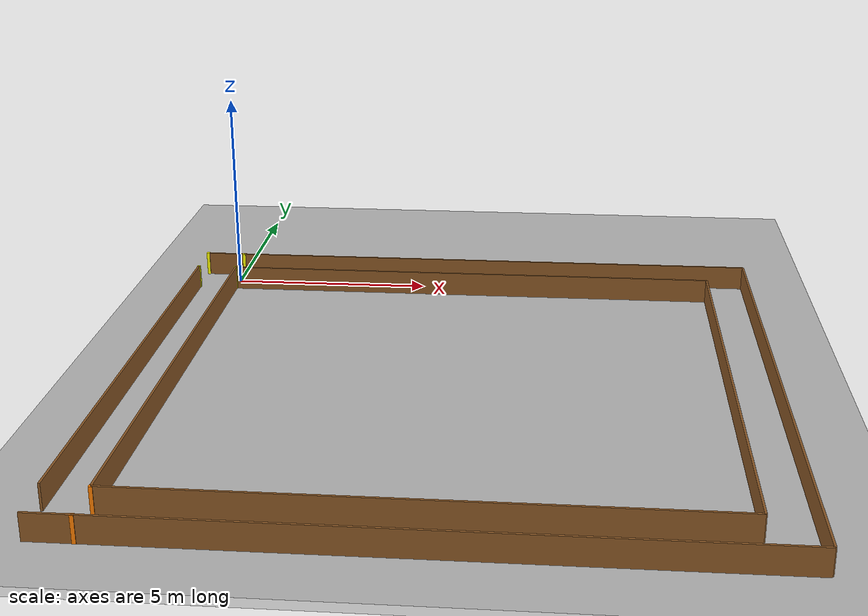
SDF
<?xml version="1.0" ?>
<sdf version='1.9'>
  <world name='simple_loop'>

    <physics name='1ms' type='ignored'>
      <max_step_size>0.001</max_step_size>
      <real_time_factor>1</real_time_factor>
      <real_time_update_rate>1000</real_time_update_rate>
    </physics>
    <gravity>0 0 -9.8</gravity>
    <magnetic_field>6e-06 2.3e-05 -4.2e-05</magnetic_field>
    <atmosphere type='adiabatic'/>

    <plugin name='gz::sim::systems::Physics'          filename='ignition-gazebo-physics-system'/>
    <plugin name='gz::sim::systems::UserCommands'     filename='ignition-gazebo-user-commands-system'/>
    <plugin name='gz::sim::systems::SceneBroadcaster' filename='ignition-gazebo-scene-broadcaster-system'/>
    <plugin name='gz::sim::systems::Contact'          filename='ignition-gazebo-contact-system'/>
    <plugin filename="ignition-gazebo-imu-system"     name="ignition::gazebo::systems::Imu"/>
    <plugin filename="gz-sim-sensors-system"          name="gz::sim::systems::Sensors">
      <render_engine>ogre2</render_engine>
    </plugin>

    <scene>
      <ambient>0.4 0.4 0.4 1</ambient>
      <background>0.7 0.7 0.7 1</background>
      <shadows>true</shadows>
    </scene>

    <light name='sun' type='directional'>
      <pose>0 0 10 0 0 0</pose>
      <cast_shadows>true</cast_shadows>
      <intensity>1</intensity>
      <direction>-0.5 0.1 -0.9</direction>
      <diffuse>0.8 0.8 0.8 1</diffuse>
      <specular>0.2 0.2 0.2 1</specular>
      <attenuation>
        <range>1000</range>
        <linear>0.01</linear>
        <constant>0.9</constant>
        <quadratic>0.001</quadratic>
      </attenuation>
    </light>

    <!-- Ground plane -->
    <model name='ground_plane'>
      <static>true</static>
      <link name='link'>
        <collision name='collision'>
          <geometry><plane><normal>0 0 1</normal><size>100 100</size></plane></geometry>
          <surface><friction><ode/></friction><bounce/><contact/></surface>
        </collision>
        <visual name='visual'>
          <geometry><plane><normal>0 0 1</normal><size>100 100</size></plane></geometry>
          <material>
            <ambient>0.8 0.8 0.8 1</ambient>
            <diffuse>0.8 0.8 0.8 1</diffuse>
            <specular>0.8 0.8 0.8 1</specular>
          </material>
        </visual>
      </link>
    </model>

    <!-- Grass texture overlay -->
    <include>
      <name>ground_plane_image</name>
      <uri>model://grass_plane</uri>
    </include>

    <!-- ================================================================
         LEG 1  (+X, y_center=0, x=0..13.525)
         ================================================================ -->

    <!-- Start posts (yellow) -->
    <model name='start_post_n'>
      <static>true</static>
      <pose>0.0 0.525 0.3 0 0 0</pose>
      <link name='link'>
        <collision name='c'><geometry><box><size>0.08 0.08 0.6</size></box></geometry></collision>
        <visual name='v'><geometry><box><size>0.08 0.08 0.6</size></box></geometry>
          <material><ambient>1 1 0 1</ambient><diffuse>1 1 0 1</diffuse></material>
        </visual>
      </link>
    </model>
    <model name='start_post_s'>
      <static>true</static>
      <pose>0.0 -0.525 0.3 0 0 0</pose>
      <link name='link'>
        <collision name='c'><geometry><box><size>0.08 0.08 0.6</size></box></geometry></collision>
        <visual name='v'><geometry><box><size>0.08 0.08 0.6</size></box></geometry>
          <material><ambient>1 1 0 1</ambient><diffuse>1 1 0 1</diffuse></material>
        </visual>
      </link>
    </model>

    <!-- Leg 1 north wall  y=+0.525, x=0..13.525 -->
    <model name='l1_n_wall'>
      <static>true</static>
      <pose>6.7625 0.525 0.3 0 0 0</pose>
      <link name='link'>
        <collision name='c'><geometry><box><size>13.525 0.05 0.6</size></box></geometry></collision>
        <visual name='v'><geometry><box><size>13.525 0.05 0.6</size></box></geometry>
          <material><ambient>0.55 0.35 0.15 1</ambient><diffuse>0.55 0.35 0.15 1</diffuse></material>
        </visual>
      </link>
    </model>

    <!-- Leg 1 south wall  y=-0.525, x=0..12.475 -->
    <model name='l1_s_wall'>
      <static>true</static>
      <pose>6.2375 -0.525 0.3 0 0 0</pose>
      <link name='link'>
        <collision name='c'><geometry><box><size>12.475 0.05 0.6</size></box></geometry></collision>
        <visual name='v'><geometry><box><size>12.475 0.05 0.6</size></box></geometry>
          <material><ambient>0.55 0.35 0.15 1</ambient><diffuse>0.55 0.35 0.15 1</diffuse></material>
        </visual>
      </link>
    </model>

    <!-- Leg 2 east (outer) wall  x=13.525, y=+0.525..-13.525 -->
    <model name='l2_e_wall'>
      <static>true</static>
      <pose>13.525 -6.5 0.3 0 0 0</pose>
      <link name='link'>
        <collision name='c'><geometry><box><size>0.05 14.05 0.6</size></box></geometry></collision>
        <visual name='v'><geometry><box><size>0.05 14.05 0.6</size></box></geometry>
          <material><ambient>0.55 0.35 0.15 1</ambient><diffuse>0.55 0.35 0.15 1</diffuse></material>
        </visual>
      </link>
    </model>

    <!-- Leg 2 west (inner) wall  x=12.475, y=-0.525..-12.475 (full, no narrow) -->
    <model name='l2_w_wall'>
      <static>true</static>
      <pose>12.475 -6.5 0.3 0 0 0</pose>
      <link name='link'>
        <collision name='c'><geometry><box><size>0.05 11.95 0.6</size></box></geometry></collision>
        <visual name='v'><geometry><box><size>0.05 11.95 0.6</size></box></geometry>
          <material><ambient>0.55 0.35 0.15 1</ambient><diffuse>0.55 0.35 0.15 1</diffuse></material>
        </visual>
      </link>
    </model>

    <!-- Leg 3 south (outer) wall  y=-13.525, x=0..13.525 -->
    <model name='l3_s_wall'>
      <static>true</static>
      <pose>6.7625 -13.525 0.3 0 0 0</pose>
      <link name='link'>
        <collision name='c'><geometry><box><size>13.525 0.05 0.6</size></box></geometry></collision>
        <visual name='v'><geometry><box><size>13.525 0.05 0.6</size></box></geometry>
          <material><ambient>0.55 0.35 0.15 1</ambient><diffuse>0.55 0.35 0.15 1</diffuse></material>
        </visual>
      </link>
    </model>

    <!-- Leg 3 north (inner) wall  y=-12.475, x=0..12.475 -->
    <model name='l3_n_wall'>
      <static>true</static>
      <pose>6.2375 -12.475 0.3 0 0 0</pose>
      <link name='link'>
        <collision name='c'><geometry><box><size>12.475 0.05 0.6</size></box></geometry></collision>
        <visual name='v'><geometry><box><size>12.475 0.05 0.6</size></box></geometry>
          <material><ambient>0.55 0.35 0.15 1</ambient><diffuse>0.55 0.35 0.15 1</diffuse></material>
        </visual>
      </link>
    </model>

    <!-- Leg 4 east wall  x=0, y=-0.525..-12.475 -->
    <model name='leg4_e_wall'>
      <static>true</static>
      <pose>0.0 -6.5 0.3 0 0 0</pose>
      <link name='link'>
        <collision name='c'><geometry><box><size>0.05 11.95 0.6</size></box></geometry></collision>
        <visual name='v'><geometry><box><size>0.05 11.95 0.6</size></box></geometry>
          <material><ambient>0.55 0.35 0.15 1</ambient><diffuse>0.55 0.35 0.15 1</diffuse></material>
        </visual>
      </link>
    </model>

    <!-- Leg 4 west wall  x=-1.0, y=-0.525..-12.475 -->
    <model name='leg4_w_wall'>
      <static>true</static>
      <pose>-1.0 -6.5 0.3 0 0 0</pose>
      <link name='link'>
        <collision name='c'><geometry><box><size>0.05 11.95 0.6</size></box></geometry></collision>
        <visual name='v'><geometry><box><size>0.05 11.95 0.6</size></box></geometry>
          <material><ambient>0.55 0.35 0.15 1</ambient><diffuse>0.55 0.35 0.15 1</diffuse></material>
        </visual>
      </link>
    </model>

    <!-- SW corner cap  y=-13.525, x=-1..0 -->
    <model name='turn3_sw_cap'>
      <static>true</static>
      <pose>-0.5 -13.525 0.3 0 0 0</pose>
      <link name='link'>
        <collision name='c'><geometry><box><size>1.0 0.05 0.6</size></box></geometry></collision>
        <visual name='v'><geometry><box><size>1.0 0.05 0.6</size></box></geometry>
          <material><ambient>0.55 0.35 0.15 1</ambient><diffuse>0.55 0.35 0.15 1</diffuse></material>
        </visual>
      </link>
    </model>

    <!-- NW corner cap  y=+0.525, x=-1..0 -->
    <model name='turn4_nw_cap'>
      <static>true</static>
      <pose>-0.5 0.525 0.3 0 0 0</pose>
      <link name='link'>
        <collision name='c'><geometry><box><size>1.0 0.05 0.6</size></box></geometry></collision>
        <visual name='v'><geometry><box><size>1.0 0.05 0.6</size></box></geometry>
          <material><ambient>0.55 0.35 0.15 1</ambient><diffuse>0.55 0.35 0.15 1</diffuse></material>
        </visual>
      </link>
    </model>

    <!-- ================================================================
         START / FINISH GATE
         ================================================================ -->

    <!-- Finish posts (yellow)  x=-1.0 -->
    <model name='finish_post_n'>
      <static>true</static>
      <pose>-1.0 0.525 0.3 0 0 0</pose>
      <link name='link'>
        <collision name='c'><geometry><box><size>0.08 0.08 0.6</size></box></geometry></collision>
        <visual name='v'><geometry><box><size>0.08 0.08 0.6</size></box></geometry>
          <material><ambient>1 1 0 1</ambient><diffuse>1 1 0 1</diffuse></material>
        </visual>
      </link>
    </model>
    <model name='finish_post_s'>
      <static>true</static>
      <pose>-1.0 -0.525 0.3 0 0 0</pose>
      <link name='link'>
        <collision name='c'><geometry><box><size>0.08 0.08 0.6</size></box></geometry></collision>
        <visual name='v'><geometry><box><size>0.08 0.08 0.6</size></box></geometry>
          <material><ambient>1 1 0 1</ambient><diffuse>1 1 0 1</diffuse></material>
        </visual>
      </link>
    </model>

    <!-- SW turn marker posts (orange)  x=0, y=-12.475 / -13.525 -->
    <model name='sw_turn_post_n'>
      <static>true</static>
      <pose>0.0 -12.475 0.3 0 0 0</pose>
      <link name='link'>
        <collision name='c'><geometry><box><size>0.08 0.08 0.6</size></box></geometry></collision>
        <visual name='v'><geometry><box><size>0.08 0.08 0.6</size></box></geometry>
          <material><ambient>1 0.5 0 1</ambient><diffuse>1 0.5 0 1</diffuse></material>
        </visual>
      </link>
    </model>
    <model name='sw_turn_post_s'>
      <static>true</static>
      <pose>0.0 -13.525 0.3 0 0 0</pose>
      <link name='link'>
        <collision name='c'><geometry><box><size>0.08 0.08 0.6</size></box></geometry></collision>
        <visual name='v'><geometry><box><size>0.08 0.08 0.6</size></box></geometry>
          <material><ambient>1 0.5 0 1</ambient><diffuse>1 0.5 0 1</diffuse></material>
        </visual>
      </link>
    </model>

  </world>
</sdf>

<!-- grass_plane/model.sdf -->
<sdf version="1.6">
  <model name="grass_plane">
    <static>true</static>
    <link name="grass_plane_link">
      <visual name="body_visual">
      	<geometry>
          <mesh><uri>meshes/grass_plane.dae</uri></mesh>
        </geometry>
      </visual>
      <collision name="body_collision">
      	<geometry>
          <mesh><uri>meshes/grass_plane.dae</uri></mesh>
          <plane>
            <normal>0 0 1</normal>
            <size>100 100</size>
          </plane>
        </geometry>
        <surface>
          <friction>
            <ode>
              <mu>0.8</mu> <!-- Coulomb friction coefficient -->
              <mu2>0.8</mu2> <!-- Second friction direction -->
            </ode>
          </friction>
        </surface>
      </collision>
    </link>
  </model>
</sdf>
